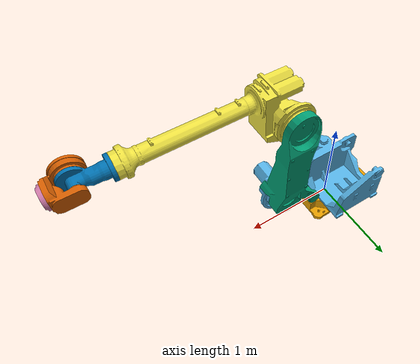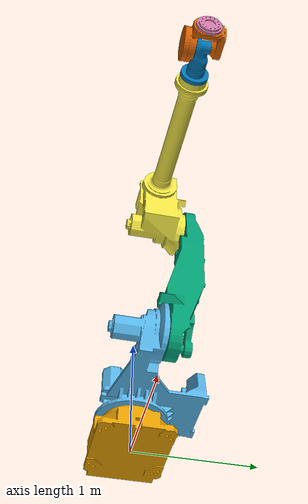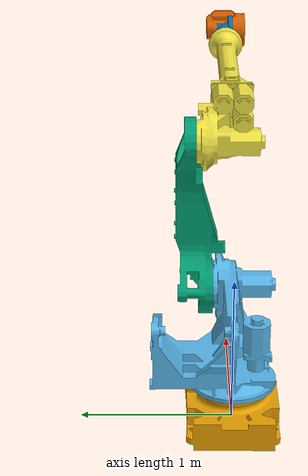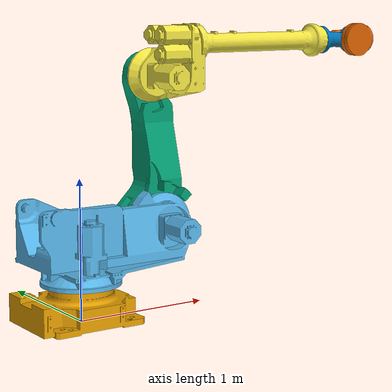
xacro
<?xml version="1.0" ?>
<robot name="fanuc_r2000ib100p" xmlns:xacro="http://ros.org/wiki/xacro">
  <xacro:arg name="use_fake_hardware" default="true"/>
  <xacro:property name="use_fake_hardware" value="$(arg use_fake_hardware)"/>
  <!-- Robot description -->
  <xacro:include filename="$(find fanuc_r2000ib_support)/urdf/r2000ib100p_macro.xacro"/>
  <xacro:fanuc_r2000ib100p prefix=""/>

  <!-- ros2_control -->
  <xacro:include filename="$(find fanuc_r2000ib_support)/urdf/r2000ib.ros2_control.xacro" />
  <xacro:fanuc_ros2_control
    name="FanucMultiInterfaceHardware"
    prefix=""
    use_fake_hardware="${use_fake_hardware}"
  />
</robot>

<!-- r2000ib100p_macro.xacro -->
<robot xmlns:xacro="http://ros.org/wiki/xacro">
  <xacro:include filename="$(find fanuc_resources)/urdf/common_materials.xacro"/>

  <xacro:macro name="fanuc_r2000ib100p" params="prefix">
    <!-- link list -->
    <link name="${prefix}base_link">
      <!-- See note 1 in package.xml about the inertial and mass values -->
      <inertial>
        <mass value="13.7742"/>
        <origin xyz="-0.028986 0.000596 0.11273"/>
        <inertia ixx="0.101998" ixy="0.000495482" ixz="0.000311158" iyy="0.13969" iyz="-0.000245375" izz="0.130433"/>
      </inertial>
      <collision name="collision">
        <geometry>
          <mesh filename="package://fanuc_r2000ib_support/meshes/r2000ib100p/collision/base_link.stl"/>
        </geometry>
      </collision>
      <visual name="visual">
        <geometry>
          <mesh filename="package://fanuc_r2000ib_support/meshes/r2000ib100p/visual/base_link.STL"/>
        </geometry>
        <xacro:material_fanuc_yellow />
      </visual>
    </link>
    <link name="${prefix}link_1">
      <!-- See note 1 in package.xml about the inertial and mass values -->
      <inertial>
        <mass value="11.8419"/>
        <origin xyz="0.000877 -0.000631 -0.062883"/>
        <inertia ixx="0.11194" ixy="-4.54988e-05" ixz="0.000280961" iyy="0.0915159" iyz="-0.000109905" izz="0.0876456"/>
      </inertial>
      <collision name="collision">
        <geometry>
          <mesh filename="package://fanuc_r2000ib_support/meshes/r2000ib100p/collision/link_1.stl"/>
        </geometry>
      </collision>
      <visual name="visual">
        <geometry>
          <mesh filename="package://fanuc_r2000ib_support/meshes/r2000ib100p/visual/link_1.STL"/>
        </geometry>
        <xacro:material_fanuc_yellow />
      </visual>
    </link>
    <link name="${prefix}link_2">
      <!-- See note 1 in package.xml about the inertial and mass values -->
      <inertial>
        <mass value="17.5394"/>
        <origin xyz="-0.000928 -0.000497 0.250051"/>
        <inertia ixx="0.493558" ixy="1.32136e-05" ixz="0.000209024" iyy="0.462939" iyz="-0.00179901" izz="0.0894214"/>
      </inertial>
      <collision name="collision">
        <geometry>
          <mesh filename="package://fanuc_r2000ib_support/meshes/r2000ib100p/collision/link_2.stl"/>
        </geometry>
      </collision>
      <visual name="visual">
        <geometry>
          <mesh filename="package://fanuc_r2000ib_support/meshes/r2000ib100p/visual/link_2.STL"/>
        </geometry>
        <xacro:material_fanuc_yellow />
      </visual>
    </link>
    <link name="${prefix}link_3">
      <!-- See note 1 in package.xml about the inertial and mass values -->
      <inertial>
        <mass value="7.46365"/>
        <origin xyz="0.099588 0.001143 0.032333"/>
        <inertia ixx="0.0252424" ixy="0.000142737" ixz="-0.00565542" iyy="0.0906438" iyz="0.000142213" izz="0.0825079"/>
      </inertial>
      <collision name="collision">
        <geometry>
          <mesh filename="package://fanuc_r2000ib_support/meshes/r2000ib100p/collision/link_3.stl"/>
        </geometry>
      </collision>
      <visual name="visual">
        <geometry>
          <mesh filename="package://fanuc_r2000ib_support/meshes/r2000ib100p/visual/link_3.STL"/>
        </geometry>
        <xacro:material_fanuc_yellow />
      </visual>
    </link>
    <link name="${prefix}link_4">
      <!-- See note 1 in package.xml about the inertial and mass values -->
      <inertial>
        <mass value="2.74436"/>
        <origin xyz="0.381678 0.001261 0.005168"/>
        <inertia ixx="0.00573099" ixy="-0.000131119" ixz="0.000380232" iyy="0.0118352" iyz="-2.26565e-05" izz="0.0114428"/>
      </inertial>
      <collision name="collision">
        <geometry>
          <mesh filename="package://fanuc_r2000ib_support/meshes/r2000ib100p/collision/link_4.stl"/>
        </geometry>
      </collision>
      <visual name="visual">
        <geometry>
          <mesh filename="package://fanuc_r2000ib_support/meshes/r2000ib100p/visual/link_4.STL"/>
        </geometry>
        <xacro:material_fanuc_yellow />
      </visual>
    </link>
    <link name="${prefix}link_5">
      <!-- See note 1 in package.xml about the inertial and mass values -->
      <inertial>
        <mass value="0.62953"/>
        <origin xyz="0.011197 -0.001056 0.000109"/>
        <inertia ixx="0.000502815" ixy="-1.03173e-05" ixz="-8.74347e-08" iyy="0.00108856" iyz="2.07657e-07" izz="0.000918873"/>
      </inertial>
      <collision name="collision">
        <geometry>
          <mesh filename="package://fanuc_r2000ib_support/meshes/r2000ib100p/collision/link_5.stl"/>
        </geometry>
      </collision>
      <visual name="visual">
        <geometry>
          <mesh filename="package://fanuc_r2000ib_support/meshes/r2000ib100p/visual/link_5.STL"/>
        </geometry>
        <xacro:material_fanuc_yellow />
      </visual>
    </link>
    <link name="${prefix}link_6">
      <!-- See note 1 in package.xml about the inertial and mass values -->
      <inertial>
        <mass value="0.137"/>
        <origin xyz="-0.00706 -0.00017 -1.32E-06" rpy="0 0 0"/>
        <inertia ixx="0.001" ixy="0" ixz="0" iyy="0.001" iyz="0" izz="0.001"/>
      </inertial>
      <!-- Meshlab calculated values (below) make gazebo crash when rotating this joint. -->
      <collision name="collision">
        <geometry>
          <mesh filename="package://fanuc_r2000ib_support/meshes/r2000ib100p/collision/link_6.stl"/>
        </geometry>
      </collision>
      <visual name="visual">
        <geometry>
          <mesh filename="package://fanuc_r2000ib_support/meshes/r2000ib100p/visual/link_6.STL"/>
        </geometry>
        <xacro:material_fanuc_yellow />
      </visual>
    </link>
    <!-- end of link list -->

    <!-- joint list -->
    <joint type="revolute" name="${prefix}joint_1">
      <origin xyz="0 0 0.6" rpy="0 0 0"/>
      <axis xyz="0 0 1"/>
      <parent link="${prefix}base_link"/>
      <child link="${prefix}link_1"/>
      <!-- See note 2 in package.xml about effort limits and dynamics values -->
      <limit effort="1000" lower="-2.967" upper="2.967" velocity="5.027"/>
      <dynamics damping="50.0" friction="1.0"/>
    </joint>
    <joint type="revolute" name="${prefix}joint_2">
      <origin xyz="0.7 0 0" rpy="0 0 0"/>
      <axis xyz="0 1 0"/>
      <parent link="${prefix}link_1"/>
      <child link="${prefix}link_2"/>
      <!-- See note 2 in package.xml about effort limits and dynamics values -->
      <limit effort="1000" lower="-1.745" upper="2.269" velocity="4.189"/>
      <dynamics damping="50.0" friction="1.0"/>
    </joint>
    <joint type="revolute" name="${prefix}joint_3">
      <origin xyz="0 0 1.075" rpy="0 0 0"/>
      <axis xyz="0 1 0"/>
      <parent link="${prefix}link_2"/>
      <child link="${prefix}link_3"/>
      <!-- See note 2 in package.xml about effort limits and dynamics values -->
      <limit effort="1000" lower="-3.491" upper="1.222" velocity="5.236"/>
      <dynamics damping="10.0" friction="1.0"/>
    </joint>
    <joint type="revolute" name="${prefix}joint_4">
      <origin xyz="1.69 0 0.225" rpy="0 0 0"/>
      <axis xyz="1 0 0"/>
      <parent link="${prefix}link_3"/>
      <child link="${prefix}link_4"/>
      <!-- See note 2 in package.xml about effort limits and dynamics values -->
      <limit effort="1000" lower="-4.712" upper="4.712" velocity="6.981"/>
      <dynamics damping="5.0" friction="1.0"/>
    </joint>
    <joint type="revolute" name="${prefix}joint_5">
      <origin xyz="0.0 0 0" rpy="0 0 0"/>
      <axis xyz="0 1 0"/>
      <parent link="${prefix}link_4"/>
      <child link="${prefix}link_5"/>
      <!-- See note 2 in package.xml about effort limits and dynamics values -->
      <limit effort="1000" lower="-2.269" upper="2.269" velocity="7.069"/>
      <dynamics damping="2.0" friction="1.0"/>
    </joint>
    <joint type="revolute" name="${prefix}joint_6">
      <origin xyz="0.215 0 0" rpy="0 1.5707 0"/>
      <axis xyz="0 0 1"/>
      <parent link="${prefix}link_5"/>
      <child link="${prefix}link_6"/>
      <!-- See note 2 in package.xml about effort limits and dynamics values -->
      <limit effort="1000" lower="-6.283" upper="6.283" velocity="10.472"/>
      <dynamics damping="1.0" friction="1.0"/>
    </joint>
    <!-- end of joint list -->

    <!-- ROS-Industrial 'base' frame- base_link to ABB World Coordinates transform -->
    <link name="${prefix}base" />
    <joint name="${prefix}base_link-base" type="fixed">
      <origin xyz="0 0 0" rpy="0 1.5707 0"/>
      <parent link="${prefix}base_link"/>
      <child link="${prefix}base"/>
    </joint>

    <!-- ROS-Industrial 'flange' frame- attachment point for EEF models -->
    <link name="${prefix}flange"/>
    <joint type="fixed" name="${prefix}joint_6-flange">
      <origin xyz="0 0 0" rpy="0 0 0"/>
      <parent link="${prefix}link_6"/>
      <child link="${prefix}flange"/>
    </joint>

    <!-- ROS-Industrial 'tool0' frame- all-zeros tool frame -->
    <link name="${prefix}tool0" />
    <joint name="${prefix}link_6-tool0" type="fixed">
      <origin xyz="0 0 0" rpy="0 ${radians(90)} 0" />
      <parent link="${prefix}flange" />
      <child link="${prefix}tool0" />
    </joint>
  </xacro:macro>
</robot>
